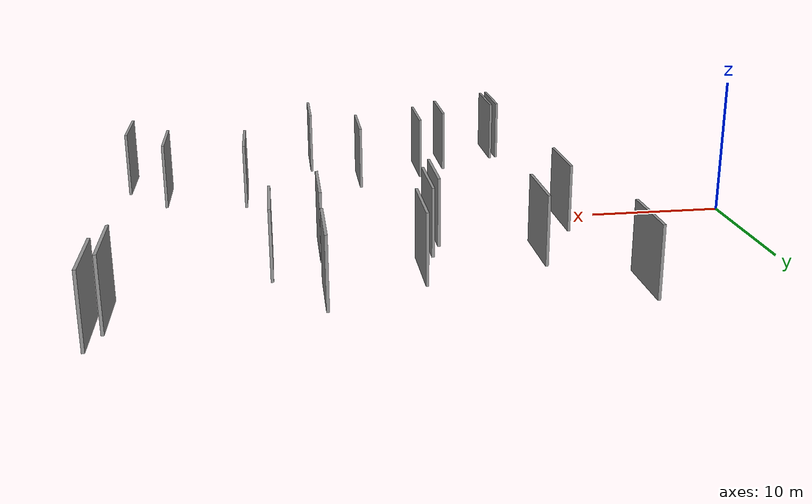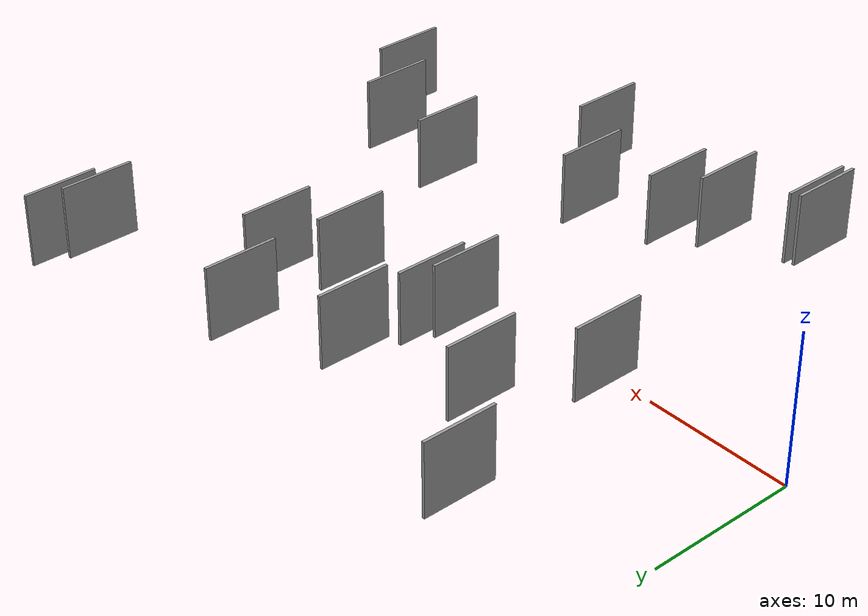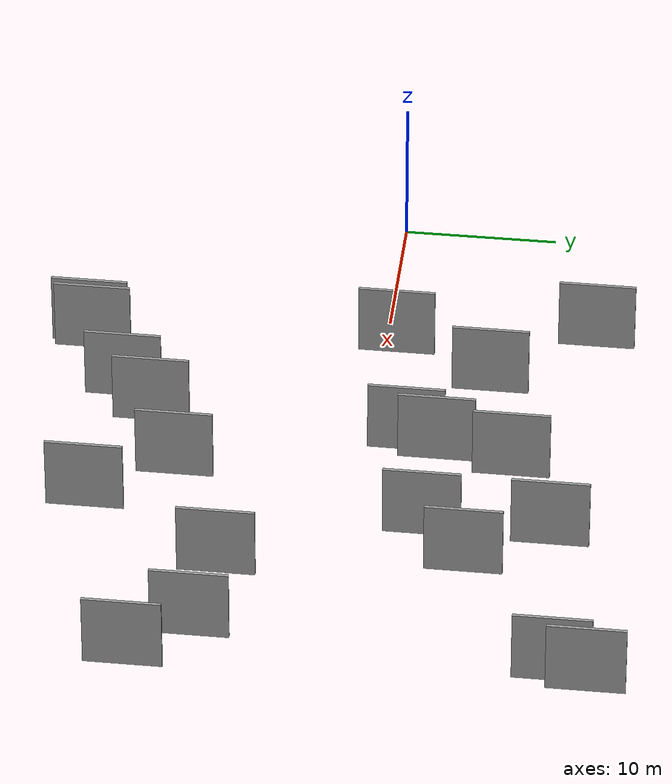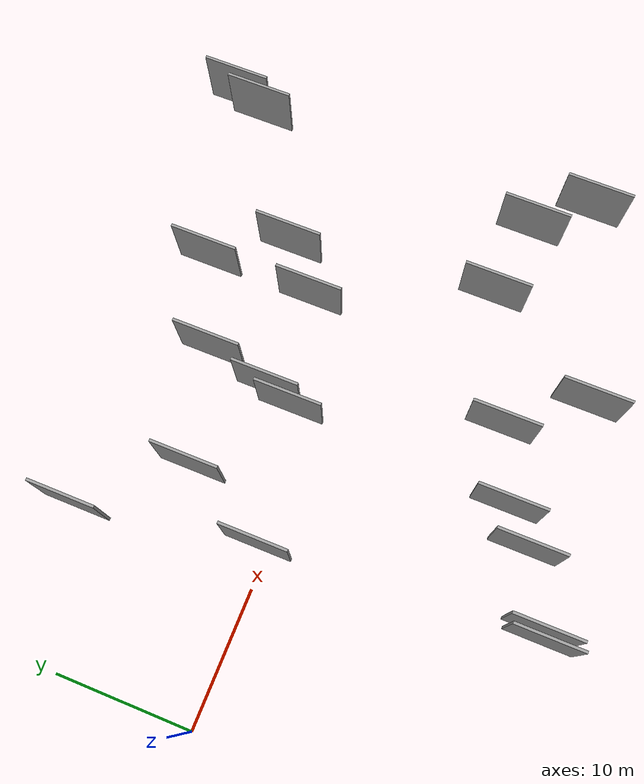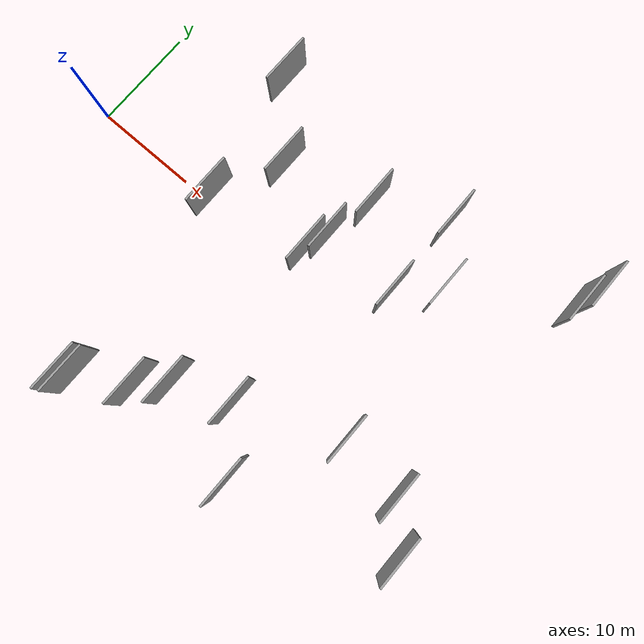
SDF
<sdf version="1.6">
 <world name="default">
  <scene>
   <sky><clouds><speed>12</speed></clouds></sky>
   <ambient>0.4 0.4 0.4 1</ambient>
   <background>0.7 0.7 0.7 1</background>
   <shadows>1</shadows>
  </scene>
  <gravity>0 0 -9.8066</gravity>
  <magnetic_field>6e-06 2.3e-05 -4.2e-05</magnetic_field>
  <physics default="0" name="default_physics" type="ode">
   <ode>
    <solver>
     <type>quick</type>
     <iters>10</iters>
     <sor>1.0</sor>
     <use_dynamic_moi_rescaling>0</use_dynamic_moi_rescaling>
    </solver>
    <constraints>
     <cfm>0</cfm>
     <erp>0.2</erp>
     <contact_max_correcting_vel>100</contact_max_correcting_vel>
     <contact_surface_layer>0.001</contact_surface_layer>
    </constraints>
   </ode>
   <max_step_size>0.004</max_step_size>
   <real_time_factor>1</real_time_factor>
   <real_time_update_rate>250</real_time_update_rate>
  </physics>
  <light name="sun" type="directional">
   <pose>0 0 10 0 0 0</pose>
   <diffuse>0.8 0.8 0.8 1</diffuse>
   <specular>0.2 0.2 0.2 1</specular>
   <attenuation>
    <range>1000</range>
    <constant>0.9</constant>
    <linear>0.01</linear>
    <quadratic>0.001</quadratic>
   </attenuation>
   <direction>-0.5 0.1 -0.9</direction>
  </light>
  <model name="grey_wall_1">
   <static>1</static>
   <pose>14.6025 -19.1012 0.0 0.000000 0.000000 1.570796</pose>
   <link name="link">
    <pose>0 0 2.50 0 0 0</pose>
    <collision name="collision"><geometry><box><size>5.00 0.2 5.00</size></box></geometry></collision>
    <visual name="visual">
     <cast_shadows>0</cast_shadows>
     <geometry><box><size>5.00 0.2 5.00</size></box></geometry>
     <material>
      <script>
       <uri>model://grey_wall/materials/scripts</uri>
       <uri>model://grey_wall/materials/textures</uri>
       <name>vrc/grey_wall</name>
      </script>
     </material>
    </visual>
   </link>
  </model>
  <model name="grey_wall_2">
   <static>1</static>
   <pose>26.9996 -12.0410 0.0 0.000000 0.000000 1.570796</pose>
   <link name="link">
    <pose>0 0 2.50 0 0 0</pose>
    <collision name="collision"><geometry><box><size>5.00 0.2 5.00</size></box></geometry></collision>
    <visual name="visual">
     <cast_shadows>0</cast_shadows>
     <geometry><box><size>5.00 0.2 5.00</size></box></geometry>
     <material>
      <script>
       <uri>model://grey_wall/materials/scripts</uri>
       <uri>model://grey_wall/materials/textures</uri>
       <name>vrc/grey_wall</name>
      </script>
     </material>
    </visual>
   </link>
  </model>
  <model name="grey_wall_3">
   <static>1</static>
   <pose>42.5704 -8.9961 0.0 0.000000 0.000000 1.570796</pose>
   <link name="link">
    <pose>0 0 2.50 0 0 0</pose>
    <collision name="collision"><geometry><box><size>5.00 0.2 5.00</size></box></geometry></collision>
    <visual name="visual">
     <cast_shadows>0</cast_shadows>
     <geometry><box><size>5.00 0.2 5.00</size></box></geometry>
     <material>
      <script>
       <uri>model://grey_wall/materials/scripts</uri>
       <uri>model://grey_wall/materials/textures</uri>
       <name>vrc/grey_wall</name>
      </script>
     </material>
    </visual>
   </link>
  </model>
  <model name="grey_wall_4">
   <static>1</static>
   <pose>12.8453 0.7260 0.0 0.000000 0.000000 1.570796</pose>
   <link name="link">
    <pose>0 0 2.50 0 0 0</pose>
    <collision name="collision"><geometry><box><size>5.00 0.2 5.00</size></box></geometry></collision>
    <visual name="visual">
     <cast_shadows>0</cast_shadows>
     <geometry><box><size>5.00 0.2 5.00</size></box></geometry>
     <material>
      <script>
       <uri>model://grey_wall/materials/scripts</uri>
       <uri>model://grey_wall/materials/textures</uri>
       <name>vrc/grey_wall</name>
      </script>
     </material>
    </visual>
   </link>
  </model>
  <model name="grey_wall_5">
   <static>1</static>
   <pose>14.0106 -19.3541 0.0 0.000000 0.000000 1.570796</pose>
   <link name="link">
    <pose>0 0 2.50 0 0 0</pose>
    <collision name="collision"><geometry><box><size>5.00 0.2 5.00</size></box></geometry></collision>
    <visual name="visual">
     <cast_shadows>0</cast_shadows>
     <geometry><box><size>5.00 0.2 5.00</size></box></geometry>
     <material>
      <script>
       <uri>model://grey_wall/materials/scripts</uri>
       <uri>model://grey_wall/materials/textures</uri>
       <name>vrc/grey_wall</name>
      </script>
     </material>
    </visual>
   </link>
  </model>
  <model name="grey_wall_6">
   <static>1</static>
   <pose>44.9889 15.9512 0.0 0.000000 0.000000 1.570796</pose>
   <link name="link">
    <pose>0 0 2.50 0 0 0</pose>
    <collision name="collision"><geometry><box><size>5.00 0.2 5.00</size></box></geometry></collision>
    <visual name="visual">
     <cast_shadows>0</cast_shadows>
     <geometry><box><size>5.00 0.2 5.00</size></box></geometry>
     <material>
      <script>
       <uri>model://grey_wall/materials/scripts</uri>
       <uri>model://grey_wall/materials/textures</uri>
       <name>vrc/grey_wall</name>
      </script>
     </material>
    </visual>
   </link>
  </model>
  <model name="grey_wall_7">
   <static>1</static>
   <pose>44.2460 13.7810 0.0 0.000000 0.000000 1.570796</pose>
   <link name="link">
    <pose>0 0 2.50 0 0 0</pose>
    <collision name="collision"><geometry><box><size>5.00 0.2 5.00</size></box></geometry></collision>
    <visual name="visual">
     <cast_shadows>0</cast_shadows>
     <geometry><box><size>5.00 0.2 5.00</size></box></geometry>
     <material>
      <script>
       <uri>model://grey_wall/materials/scripts</uri>
       <uri>model://grey_wall/materials/textures</uri>
       <name>vrc/grey_wall</name>
      </script>
     </material>
    </visual>
   </link>
  </model>
  <model name="grey_wall_8">
   <static>1</static>
   <pose>19.3815 -16.4159 0.0 0.000000 0.000000 1.570796</pose>
   <link name="link">
    <pose>0 0 2.50 0 0 0</pose>
    <collision name="collision"><geometry><box><size>5.00 0.2 5.00</size></box></geometry></collision>
    <visual name="visual">
     <cast_shadows>0</cast_shadows>
     <geometry><box><size>5.00 0.2 5.00</size></box></geometry>
     <material>
      <script>
       <uri>model://grey_wall/materials/scripts</uri>
       <uri>model://grey_wall/materials/textures</uri>
       <name>vrc/grey_wall</name>
      </script>
     </material>
    </visual>
   </link>
  </model>
  <model name="grey_wall_9">
   <static>1</static>
   <pose>34.5077 7.3029 0.0 0.000000 0.000000 1.570796</pose>
   <link name="link">
    <pose>0 0 2.50 0 0 0</pose>
    <collision name="collision"><geometry><box><size>5.00 0.2 5.00</size></box></geometry></collision>
    <visual name="visual">
     <cast_shadows>0</cast_shadows>
     <geometry><box><size>5.00 0.2 5.00</size></box></geometry>
     <material>
      <script>
       <uri>model://grey_wall/materials/scripts</uri>
       <uri>model://grey_wall/materials/textures</uri>
       <name>vrc/grey_wall</name>
      </script>
     </material>
    </visual>
   </link>
  </model>
  <model name="grey_wall_10">
   <static>1</static>
   <pose>21.7123 -14.2718 0.0 0.000000 0.000000 1.570796</pose>
   <link name="link">
    <pose>0 0 2.50 0 0 0</pose>
    <collision name="collision"><geometry><box><size>5.00 0.2 5.00</size></box></geometry></collision>
    <visual name="visual">
     <cast_shadows>0</cast_shadows>
     <geometry><box><size>5.00 0.2 5.00</size></box></geometry>
     <material>
      <script>
       <uri>model://grey_wall/materials/scripts</uri>
       <uri>model://grey_wall/materials/textures</uri>
       <name>vrc/grey_wall</name>
      </script>
     </material>
    </visual>
   </link>
  </model>
  <model name="grey_wall_11">
   <static>1</static>
   <pose>16.2055 7.2127 0.0 0.000000 0.000000 1.570796</pose>
   <link name="link">
    <pose>0 0 2.50 0 0 0</pose>
    <collision name="collision"><geometry><box><size>5.00 0.2 5.00</size></box></geometry></collision>
    <visual name="visual">
     <cast_shadows>0</cast_shadows>
     <geometry><box><size>5.00 0.2 5.00</size></box></geometry>
     <material>
      <script>
       <uri>model://grey_wall/materials/scripts</uri>
       <uri>model://grey_wall/materials/textures</uri>
       <name>vrc/grey_wall</name>
      </script>
     </material>
    </visual>
   </link>
  </model>
  <model name="grey_wall_12">
   <static>1</static>
   <pose>24.6696 9.3863 0.0 0.000000 0.000000 1.570796</pose>
   <link name="link">
    <pose>0 0 2.50 0 0 0</pose>
    <collision name="collision"><geometry><box><size>5.00 0.2 5.00</size></box></geometry></collision>
    <visual name="visual">
     <cast_shadows>0</cast_shadows>
     <geometry><box><size>5.00 0.2 5.00</size></box></geometry>
     <material>
      <script>
       <uri>model://grey_wall/materials/scripts</uri>
       <uri>model://grey_wall/materials/textures</uri>
       <name>vrc/grey_wall</name>
      </script>
     </material>
    </visual>
   </link>
  </model>
  <model name="grey_wall_13">
   <static>1</static>
   <pose>30.8649 -17.2868 0.0 0.000000 0.000000 1.570796</pose>
   <link name="link">
    <pose>0 0 2.50 0 0 0</pose>
    <collision name="collision"><geometry><box><size>5.00 0.2 5.00</size></box></geometry></collision>
    <visual name="visual">
     <cast_shadows>0</cast_shadows>
     <geometry><box><size>5.00 0.2 5.00</size></box></geometry>
     <material>
      <script>
       <uri>model://grey_wall/materials/scripts</uri>
       <uri>model://grey_wall/materials/textures</uri>
       <name>vrc/grey_wall</name>
      </script>
     </material>
    </visual>
   </link>
  </model>
  <model name="grey_wall_14">
   <static>1</static>
   <pose>45.7720 -12.7539 0.0 0.000000 0.000000 1.570796</pose>
   <link name="link">
    <pose>0 0 2.50 0 0 0</pose>
    <collision name="collision"><geometry><box><size>5.00 0.2 5.00</size></box></geometry></collision>
    <visual name="visual">
     <cast_shadows>0</cast_shadows>
     <geometry><box><size>5.00 0.2 5.00</size></box></geometry>
     <material>
      <script>
       <uri>model://grey_wall/materials/scripts</uri>
       <uri>model://grey_wall/materials/textures</uri>
       <name>vrc/grey_wall</name>
      </script>
     </material>
    </visual>
   </link>
  </model>
  <model name="grey_wall_15">
   <static>1</static>
   <pose>22.7996 2.4297 0.0 0.000000 0.000000 1.570796</pose>
   <link name="link">
    <pose>0 0 2.50 0 0 0</pose>
    <collision name="collision"><geometry><box><size>5.00 0.2 5.00</size></box></geometry></collision>
    <visual name="visual">
     <cast_shadows>0</cast_shadows>
     <geometry><box><size>5.00 0.2 5.00</size></box></geometry>
     <material>
      <script>
       <uri>model://grey_wall/materials/scripts</uri>
       <uri>model://grey_wall/materials/textures</uri>
       <name>vrc/grey_wall</name>
      </script>
     </material>
    </visual>
   </link>
  </model>
  <model name="grey_wall_16">
   <static>1</static>
   <pose>31.2163 12.4888 0.0 0.000000 0.000000 1.570796</pose>
   <link name="link">
    <pose>0 0 2.50 0 0 0</pose>
    <collision name="collision"><geometry><box><size>5.00 0.2 5.00</size></box></geometry></collision>
    <visual name="visual">
     <cast_shadows>0</cast_shadows>
     <geometry><box><size>5.00 0.2 5.00</size></box></geometry>
     <material>
      <script>
       <uri>model://grey_wall/materials/scripts</uri>
       <uri>model://grey_wall/materials/textures</uri>
       <name>vrc/grey_wall</name>
      </script>
     </material>
    </visual>
   </link>
  </model>
  <model name="grey_wall_17">
   <static>1</static>
   <pose>36.3836 -8.1371 0.0 0.000000 0.000000 1.570796</pose>
   <link name="link">
    <pose>0 0 2.50 0 0 0</pose>
    <collision name="collision"><geometry><box><size>5.00 0.2 5.00</size></box></geometry></collision>
    <visual name="visual">
     <cast_shadows>0</cast_shadows>
     <geometry><box><size>5.00 0.2 5.00</size></box></geometry>
     <material>
      <script>
       <uri>model://grey_wall/materials/scripts</uri>
       <uri>model://grey_wall/materials/textures</uri>
       <name>vrc/grey_wall</name>
      </script>
     </material>
    </visual>
   </link>
  </model>
  <model name="grey_wall_18">
   <static>1</static>
   <pose>10.7502 13.6766 0.0 0.000000 0.000000 1.570796</pose>
   <link name="link">
    <pose>0 0 2.50 0 0 0</pose>
    <collision name="collision"><geometry><box><size>5.00 0.2 5.00</size></box></geometry></collision>
    <visual name="visual">
     <cast_shadows>0</cast_shadows>
     <geometry><box><size>5.00 0.2 5.00</size></box></geometry>
     <material>
      <script>
       <uri>model://grey_wall/materials/scripts</uri>
       <uri>model://grey_wall/materials/textures</uri>
       <name>vrc/grey_wall</name>
      </script>
     </material>
    </visual>
   </link>
  </model>
  <model name="grey_wall_19">
   <static>1</static>
   <pose>31.1416 4.3175 0.0 0.000000 0.000000 1.570796</pose>
   <link name="link">
    <pose>0 0 2.50 0 0 0</pose>
    <collision name="collision"><geometry><box><size>5.00 0.2 5.00</size></box></geometry></collision>
    <visual name="visual">
     <cast_shadows>0</cast_shadows>
     <geometry><box><size>5.00 0.2 5.00</size></box></geometry>
     <material>
      <script>
       <uri>model://grey_wall/materials/scripts</uri>
       <uri>model://grey_wall/materials/textures</uri>
       <name>vrc/grey_wall</name>
      </script>
     </material>
    </visual>
   </link>
  </model>
  <model name="grey_wall_20">
   <static>1</static>
   <pose>23.5306 4.4632 0.0 0.000000 0.000000 1.570796</pose>
   <link name="link">
    <pose>0 0 2.50 0 0 0</pose>
    <collision name="collision"><geometry><box><size>5.00 0.2 5.00</size></box></geometry></collision>
    <visual name="visual">
     <cast_shadows>0</cast_shadows>
     <geometry><box><size>5.00 0.2 5.00</size></box></geometry>
     <material>
      <script>
       <uri>model://grey_wall/materials/scripts</uri>
       <uri>model://grey_wall/materials/textures</uri>
       <name>vrc/grey_wall</name>
      </script>
     </material>
    </visual>
   </link>
  </model>
 </world>
</sdf>
